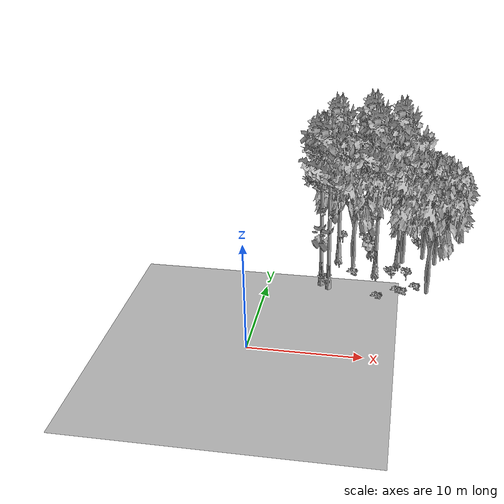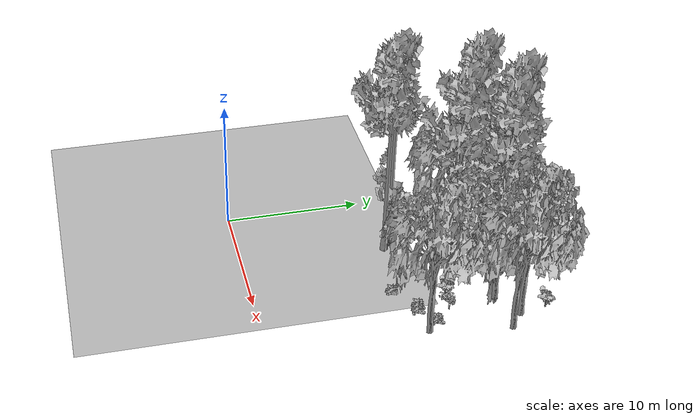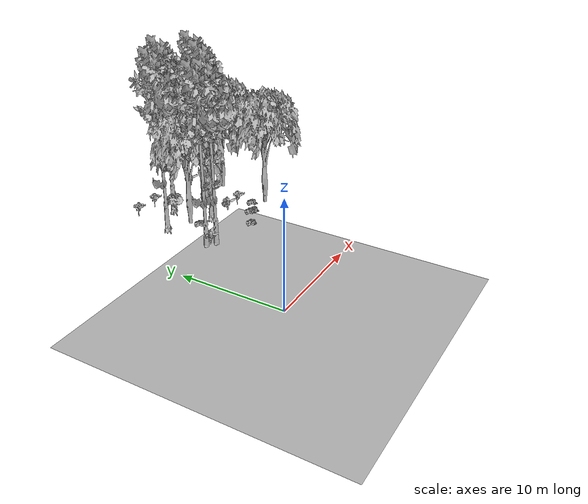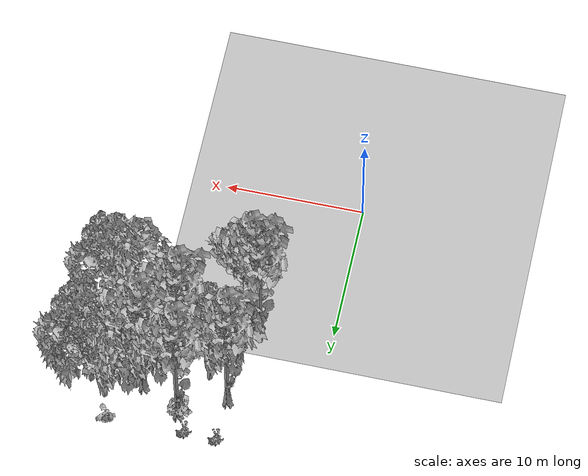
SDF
<sdf version="1.7">
 <world name="default">
  <model name="ground_plane">
   <static>1</static>
   <link name="link">
    <collision name="collision">
     <pose>-50 0 0 0 -0 0</pose>
     <geometry><plane><normal>0 0 1</normal><size>80 80</size></plane></geometry>
     <surface><contact><ode><min_depth>0.01</min_depth><max_vel>0</max_vel></ode></contact></surface>
    </collision>
    <visual name="grass">
     <cast_shadows>0</cast_shadows>
     <geometry>
      <mesh>
       <scale>0.46714285714285714 0.46714285714285714 0.1</scale>
       <uri>file://grass_plane/meshes/grass_plane.dae</uri>
      </mesh>
     </geometry>
    </visual>
   </link>
  </model>
  <model name="Tree 0">
   <static>1</static>
   <pose>15.971096686707469 16.843119865354126 0 1.57079 -0 0</pose>
   <link name="link">
    <collision name="collision">
     <geometry><mesh><scale>3.5 5 3.5</scale><uri>model://tree_2/meshes/tree_2.obj</uri></mesh></geometry>
    </collision>
    <visual name="visual">
     <geometry><mesh><scale>3.5 5 3.5</scale><uri>model://tree_2/meshes/tree_2.obj</uri></mesh></geometry>
    </visual>
   </link>
  </model>
  <model name="Tree 144">
   <static>1</static>
   <pose>5.101576588441624 11.155435962321832 0 1.57079 -0 0</pose>
   <link name="link">
    <collision name="collision">
     <geometry><mesh><scale>3.5 5 3.5</scale><uri>model://tree_9/meshes/tree_9.obj</uri></mesh></geometry>
    </collision>
    <visual name="visual">
     <geometry><mesh><scale>3.5 5 3.5</scale><uri>model://tree_9/meshes/tree_9.obj</uri></mesh></geometry>
    </visual>
   </link>
  </model>
  <model name="Tree 160">
   <static>1</static>
   <pose>12.31447242251609 16.693181387859553 0 1.57079 -0 0</pose>
   <link name="link">
    <collision name="collision">
     <geometry><mesh><scale>3.5 5 3.5</scale><uri>model://tree_9/meshes/tree_9.obj</uri></mesh></geometry>
    </collision>
    <visual name="visual">
     <geometry><mesh><scale>3.5 5 3.5</scale><uri>model://tree_9/meshes/tree_9.obj</uri></mesh></geometry>
    </visual>
   </link>
  </model>
  <model name="Tree 200">
   <static>1</static>
   <pose>15.170120725267587 11.16041653099002 0 1.57079 -0 0</pose>
   <link name="link">
    <collision name="collision">
     <geometry><mesh><scale>3.5 5 3.5</scale><uri>model://tree_2/meshes/tree_2.obj</uri></mesh></geometry>
    </collision>
    <visual name="visual">
     <geometry><mesh><scale>3.5 5 3.5</scale><uri>model://tree_2/meshes/tree_2.obj</uri></mesh></geometry>
    </visual>
   </link>
  </model>
  <model name="Tree 216">
   <static>1</static>
   <pose>12.714087001779028 16.678070673680637 0 1.57079 -0 0</pose>
   <link name="link">
    <collision name="collision">
     <geometry><mesh><scale>3.5 5 3.5</scale><uri>model://tree_2/meshes/tree_2.obj</uri></mesh></geometry>
    </collision>
    <visual name="visual">
     <geometry><mesh><scale>3.5 5 3.5</scale><uri>model://tree_2/meshes/tree_2.obj</uri></mesh></geometry>
    </visual>
   </link>
  </model>
  <model name="Tree 278">
   <static>1</static>
   <pose>9.476732342598382 18.26978506785455 0 1.57079 -0 0</pose>
   <link name="link">
    <collision name="collision">
     <geometry><mesh><scale>3.5 5 3.5</scale><uri>model://tree_9/meshes/tree_9.obj</uri></mesh></geometry>
    </collision>
    <visual name="visual">
     <geometry><mesh><scale>3.5 5 3.5</scale><uri>model://tree_9/meshes/tree_9.obj</uri></mesh></geometry>
    </visual>
   </link>
  </model>
  <model name="Tree 307">
   <static>1</static>
   <pose>10.180458625202057 14.18873473398029 0 1.57079 -0 0</pose>
   <link name="link">
    <collision name="collision">
     <geometry><mesh><scale>3.5 5 3.5</scale><uri>model://tree_9/meshes/tree_9.obj</uri></mesh></geometry>
    </collision>
    <visual name="visual">
     <geometry><mesh><scale>3.5 5 3.5</scale><uri>model://tree_9/meshes/tree_9.obj</uri></mesh></geometry>
    </visual>
   </link>
  </model>
  <model name="Tree 335">
   <static>1</static>
   <pose>7.8107974262804944 15.0061594365092 0 1.57079 -0 0</pose>
   <link name="link">
    <collision name="collision">
     <geometry><mesh><scale>3.5 5 3.5</scale><uri>model://tree_2/meshes/tree_2.obj</uri></mesh></geometry>
    </collision>
    <visual name="visual">
     <geometry><mesh><scale>3.5 5 3.5</scale><uri>model://tree_2/meshes/tree_2.obj</uri></mesh></geometry>
    </visual>
   </link>
  </model>
  <model name="Tree 517">
   <static>1</static>
   <pose>14.765613206374773 17.836487441959513 0 1.57079 -0 0</pose>
   <link name="link">
    <collision name="collision">
     <geometry><mesh><scale>3.5 5 3.5</scale><uri>model://tree_2/meshes/tree_2.obj</uri></mesh></geometry>
    </collision>
    <visual name="visual">
     <geometry><mesh><scale>3.5 5 3.5</scale><uri>model://tree_2/meshes/tree_2.obj</uri></mesh></geometry>
    </visual>
   </link>
  </model>
  <model name="Tree 550">
   <static>1</static>
   <pose>6.278919949203498 16.53869440216777 0 1.57079 -0 0</pose>
   <link name="link">
    <collision name="collision">
     <geometry><mesh><scale>3.5 5 3.5</scale><uri>model://tree_9/meshes/tree_9.obj</uri></mesh></geometry>
    </collision>
    <visual name="visual">
     <geometry><mesh><scale>3.5 5 3.5</scale><uri>model://tree_9/meshes/tree_9.obj</uri></mesh></geometry>
    </visual>
   </link>
  </model>
  <model name="Tree 596">
   <static>1</static>
   <pose>5.876940938749044 10.595609594200297 0 1.57079 -0 0</pose>
   <link name="link">
    <collision name="collision">
     <geometry><mesh><scale>3.5 5 3.5</scale><uri>model://tree_9/meshes/tree_9.obj</uri></mesh></geometry>
    </collision>
    <visual name="visual">
     <geometry><mesh><scale>3.5 5 3.5</scale><uri>model://tree_9/meshes/tree_9.obj</uri></mesh></geometry>
    </visual>
   </link>
  </model>
  <model name="Bush 39">
   <static>1</static>
   <pose>14.161872248110058 12.05035693181054 0 1.57079 -0 0</pose>
   <link name="link">
    <collision name="collision">
     <geometry><mesh><scale>2 2 2</scale><uri>model://bush_2/meshes/bush_2.obj</uri></mesh></geometry>
     <surface><contact><collide_without_contact>false</collide_without_contact></contact></surface>
    </collision>
    <visual name="visual">
     <geometry><mesh><scale>2 2 2</scale><uri>model://bush_2/meshes/bush_2.obj</uri></mesh></geometry>
    </visual>
   </link>
  </model>
  <model name="Bush 84">
   <static>1</static>
   <pose>11.834162839417367 13.392815751113254 0 1.57079 -0 0</pose>
   <link name="link">
    <collision name="collision">
     <geometry><mesh><scale>2 2 2</scale><uri>model://bush_0/meshes/bush_0.obj</uri></mesh></geometry>
     <surface><contact><collide_without_contact>false</collide_without_contact></contact></surface>
    </collision>
    <visual name="visual">
     <geometry><mesh><scale>2 2 2</scale><uri>model://bush_0/meshes/bush_0.obj</uri></mesh></geometry>
    </visual>
   </link>
  </model>
  <model name="Bush 169">
   <static>1</static>
   <pose>8.7087739077244 20.01654750462557 0 1.57079 -0 0</pose>
   <link name="link">
    <collision name="collision">
     <geometry><mesh><scale>2 2 2</scale><uri>model://bush_5/meshes/bush_5.obj</uri></mesh></geometry>
     <surface><contact><collide_without_contact>false</collide_without_contact></contact></surface>
    </collision>
    <visual name="visual">
     <geometry><mesh><scale>2 2 2</scale><uri>model://bush_5/meshes/bush_5.obj</uri></mesh></geometry>
    </visual>
   </link>
  </model>
  <model name="Bush 203">
   <static>1</static>
   <pose>14.444479600755855 19.844596288190004 0 1.57079 -0 0</pose>
   <link name="link">
    <collision name="collision">
     <geometry><mesh><scale>2 2 2</scale><uri>model://bush_0/meshes/bush_0.obj</uri></mesh></geometry>
     <surface><contact><collide_without_contact>false</collide_without_contact></contact></surface>
    </collision>
    <visual name="visual">
     <geometry><mesh><scale>2 2 2</scale><uri>model://bush_0/meshes/bush_0.obj</uri></mesh></geometry>
    </visual>
   </link>
  </model>
  <model name="Bush 224">
   <static>1</static>
   <pose>12.876213115803928 11.05228349989168 0 1.57079 -0 0</pose>
   <link name="link">
    <collision name="collision">
     <geometry><mesh><scale>2 2 2</scale><uri>model://bush_2/meshes/bush_2.obj</uri></mesh></geometry>
     <surface><contact><collide_without_contact>false</collide_without_contact></contact></surface>
    </collision>
    <visual name="visual">
     <geometry><mesh><scale>2 2 2</scale><uri>model://bush_2/meshes/bush_2.obj</uri></mesh></geometry>
    </visual>
   </link>
  </model>
  <model name="Bush 238">
   <static>1</static>
   <pose>10.589108579004808 9.838799994445104 0 1.57079 -0 0</pose>
   <link name="link">
    <collision name="collision">
     <geometry><mesh><scale>2 2 2</scale><uri>model://bush_2/meshes/bush_2.obj</uri></mesh></geometry>
     <surface><contact><collide_without_contact>false</collide_without_contact></contact></surface>
    </collision>
    <visual name="visual">
     <geometry><mesh><scale>2 2 2</scale><uri>model://bush_2/meshes/bush_2.obj</uri></mesh></geometry>
    </visual>
   </link>
  </model>
  <model name="Bush 268">
   <static>1</static>
   <pose>5.587331956186432 11.044759217583007 0 1.57079 -0 0</pose>
   <link name="link">
    <collision name="collision">
     <geometry><mesh><scale>2 2 2</scale><uri>model://bush_0/meshes/bush_0.obj</uri></mesh></geometry>
     <surface><contact><collide_without_contact>false</collide_without_contact></contact></surface>
    </collision>
    <visual name="visual">
     <geometry><mesh><scale>2 2 2</scale><uri>model://bush_0/meshes/bush_0.obj</uri></mesh></geometry>
    </visual>
   </link>
  </model>
  <model name="Bush 295">
   <static>1</static>
   <pose>6.388607609434025 20.10423612966582 0 1.57079 -0 0</pose>
   <link name="link">
    <collision name="collision">
     <geometry><mesh><scale>2 2 2</scale><uri>model://bush_5/meshes/bush_5.obj</uri></mesh></geometry>
     <surface><contact><collide_without_contact>false</collide_without_contact></contact></surface>
    </collision>
    <visual name="visual">
     <geometry><mesh><scale>2 2 2</scale><uri>model://bush_5/meshes/bush_5.obj</uri></mesh></geometry>
    </visual>
   </link>
  </model>
  <model name="Bush 321">
   <static>1</static>
   <pose>12.432695667965632 11.186693314592553 0 1.57079 -0 0</pose>
   <link name="link">
    <collision name="collision">
     <geometry><mesh><scale>2 2 2</scale><uri>model://bush_2/meshes/bush_2.obj</uri></mesh></geometry>
     <surface><contact><collide_without_contact>false</collide_without_contact></contact></surface>
    </collision>
    <visual name="visual">
     <geometry><mesh><scale>2 2 2</scale><uri>model://bush_2/meshes/bush_2.obj</uri></mesh></geometry>
    </visual>
   </link>
  </model>
  <model name="Bush 346">
   <static>1</static>
   <pose>7.942258357987981 13.984295271716562 0 1.57079 -0 0</pose>
   <link name="link">
    <collision name="collision">
     <geometry><mesh><scale>2 2 2</scale><uri>model://bush_2/meshes/bush_2.obj</uri></mesh></geometry>
     <surface><contact><collide_without_contact>false</collide_without_contact></contact></surface>
    </collision>
    <visual name="visual">
     <geometry><mesh><scale>2 2 2</scale><uri>model://bush_2/meshes/bush_2.obj</uri></mesh></geometry>
    </visual>
   </link>
  </model>
  <model name="Bush 430">
   <static>1</static>
   <pose>9.415754230117841 17.891388624311716 0 1.57079 -0 0</pose>
   <link name="link">
    <collision name="collision">
     <geometry><mesh><scale>2 2 2</scale><uri>model://bush_1/meshes/bush_1.obj</uri></mesh></geometry>
     <surface><contact><collide_without_contact>false</collide_without_contact></contact></surface>
    </collision>
    <visual name="visual">
     <geometry><mesh><scale>2 2 2</scale><uri>model://bush_1/meshes/bush_1.obj</uri></mesh></geometry>
    </visual>
   </link>
  </model>
  <model name="Bush 493">
   <static>1</static>
   <pose>13.293661296321098 13.211504642739243 0 1.57079 -0 0</pose>
   <link name="link">
    <collision name="collision">
     <geometry><mesh><scale>2 2 2</scale><uri>model://bush_5/meshes/bush_5.obj</uri></mesh></geometry>
     <surface><contact><collide_without_contact>false</collide_without_contact></contact></surface>
    </collision>
    <visual name="visual">
     <geometry><mesh><scale>2 2 2</scale><uri>model://bush_5/meshes/bush_5.obj</uri></mesh></geometry>
    </visual>
   </link>
  </model>
 </world>
</sdf>
